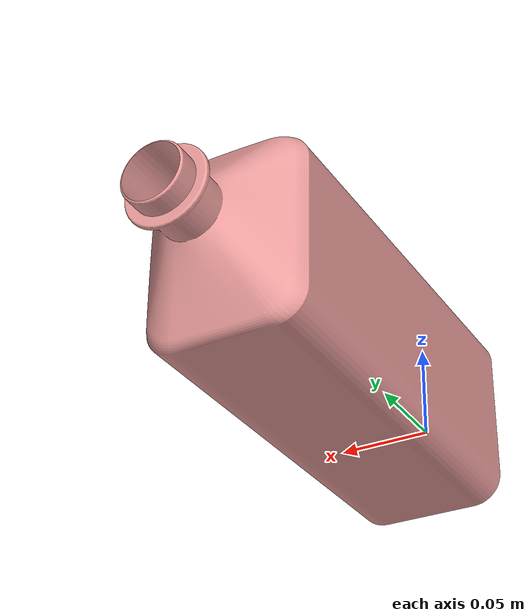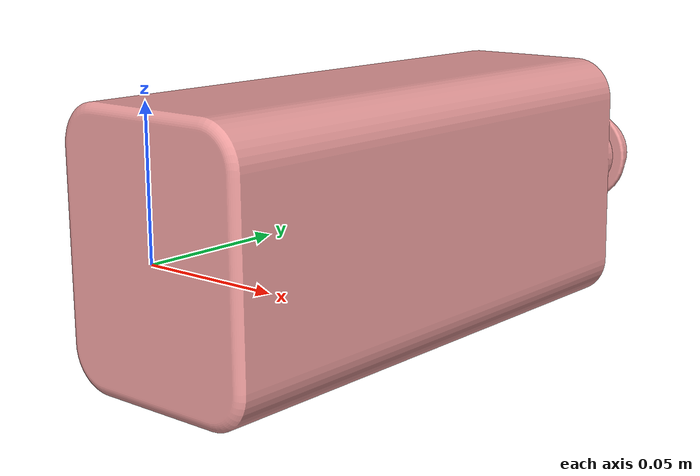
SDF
<?xml version="1.0" ?>
<sdf version="1.6">
  <model name="medicine_box">
    <static>false</static>
    <link name="link">
      <inertial>
        <mass>0.1</mass>
        <inertia>
          <ixx>0.0001</ixx>
          <iyy>0.0001</iyy>
          <izz>0.0001</izz>
        </inertia>
      </inertial>
      <visual name="visual">
        <geometry>
          <mesh>
            <uri>model://medicine_box/meshes/medicine_box.stl</uri>
            <scale>0.001 0.001 0.001</scale>
          </mesh>
        </geometry>
        <material>
          <ambient>0.9 0.3 0.3 1</ambient>
          <diffuse>0.9 0.6 0.6 1</diffuse>
        </material>
      </visual>
      <collision name="collision">
        <geometry>
          <box>
            <size>0.08 0.04 0.02</size>
          </box>
        </geometry>
      </collision>
    </link>
  </model>
</sdf>
